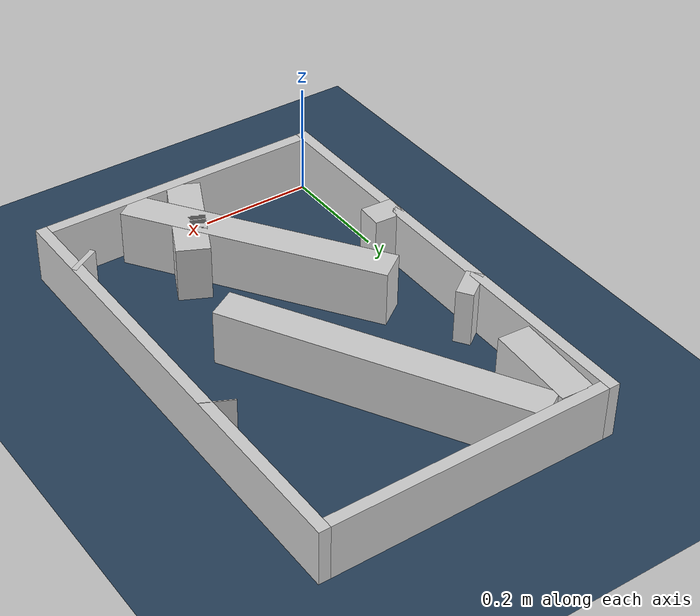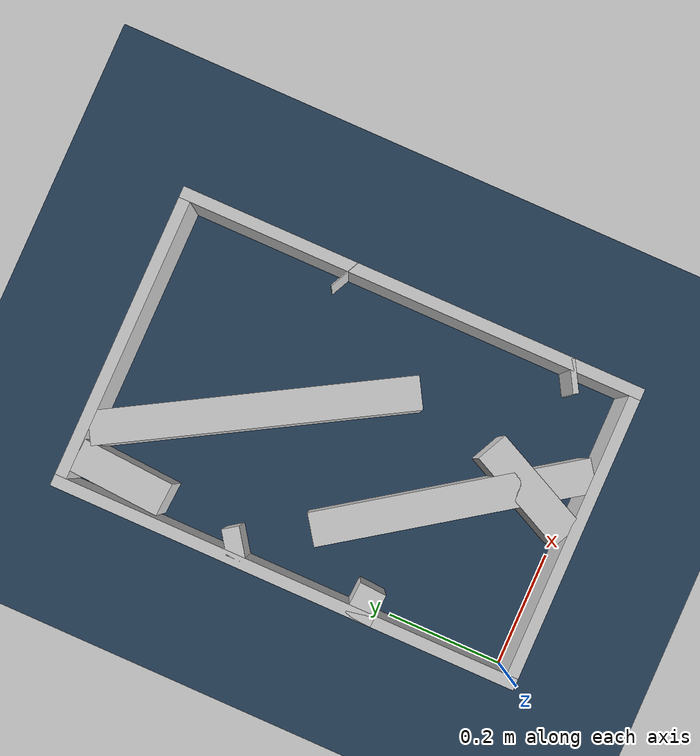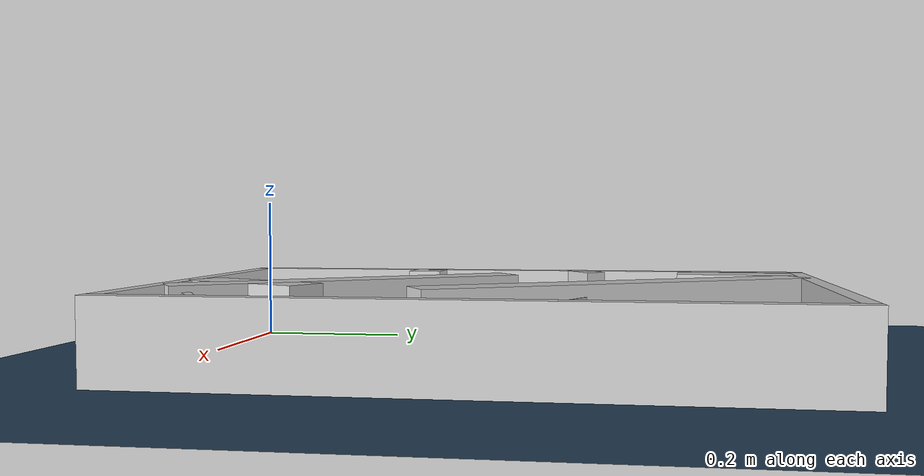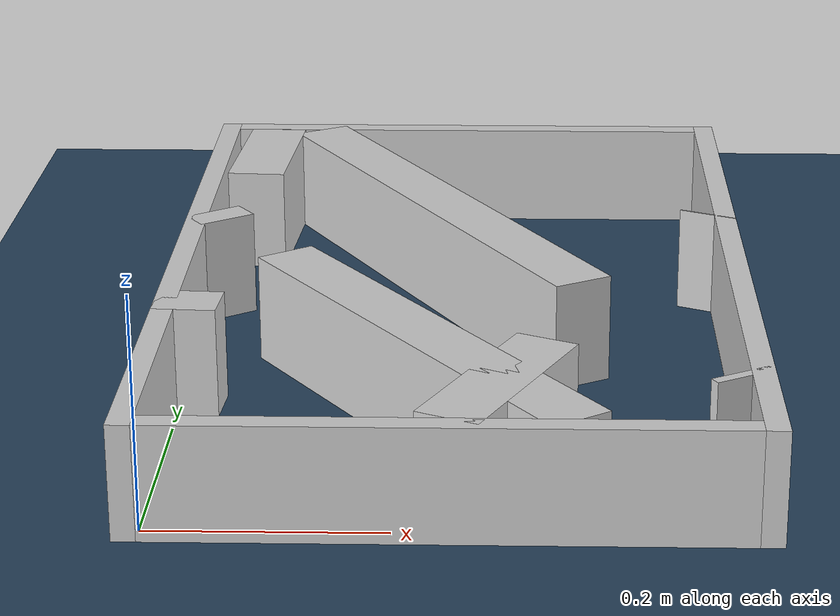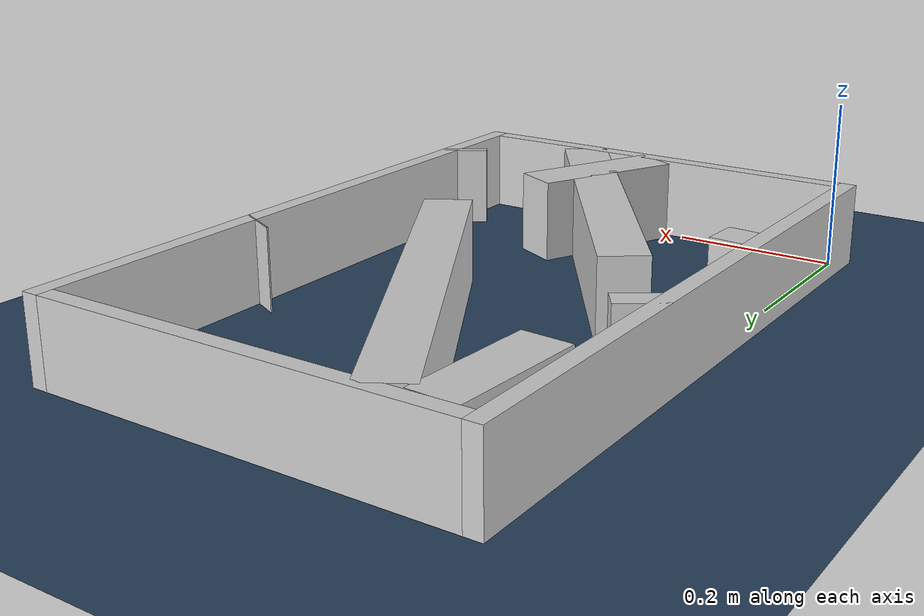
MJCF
<?xml version="1.0" ?>
<mujoco model="generated_real_template">
  <compiler angle="degree"/>
  <option timestep="0.002" integrator="implicitfast" iterations="100" cone="elliptic"/>
  <default>
    <geom density="1"/>
  </default>
  <asset>
    <texture builtin="gradient" height="3072" rgb1="0.3 0.5 0.7" rgb2="0 0 0" type="skybox" width="512"/>
    <texture builtin="checker" height="300" mark="edge" markrgb="0.8 0.8 0.8" name="groundplane" rgb1="0.2 0.3 0.4" rgb2="0.1 0.2 0.3" type="2d" width="300"/>
    <material name="groundplane" reflectance="0.2" texrepeat="5 5" texture="groundplane" texuniform="true"/>
  </asset>
  <worldbody>
    <light dir="0 0 -1" directional="true" pos="0 0 1.5"/>
    <geom name="floor" type="plane" condim="4" friction="0.5 0.005 0.001" material="groundplane" size="0 0 0.05"/>
    <body name="walls">
      <geom name="wall_boundary_left" type="box" condim="4" friction="1.0 0.005 0.0001" rgba="0.8 0.8 0.8 1" pos="-0.010000 0.387500 0.050000" euler="0 0 0.000000" size="0.010000 0.407500 0.050000"/>
      <geom name="wall_boundary_right" type="box" condim="4" friction="1.0 0.005 0.0001" rgba="0.8 0.8 0.8 1" pos="0.500000 0.387500 0.050000" euler="0 0 0.000000" size="0.010000 0.407500 0.050000"/>
      <geom name="wall_boundary_bottom" type="box" condim="4" friction="1.0 0.005 0.0001" rgba="0.8 0.8 0.8 1" pos="0.245000 -0.010000 0.050000" euler="0 0 0.000000" size="0.245000 0.010000 0.050000"/>
      <geom name="wall_boundary_top" type="box" condim="4" friction="1.0 0.005 0.0001" rgba="0.8 0.8 0.8 1" pos="0.245000 0.785000 0.050000" euler="0 0 0.000000" size="0.245000 0.010000 0.050000"/>
      <geom name="wall_inner_1_1" type="box" condim="4" friction="1.0 0.005 0.0001" rgba="0.8 0.8 0.8 1" pos="0.284190 0.084399 0.050000" euler="0 0 64.285731" size="0.093676 0.028500 0.050000"/>
      <geom name="wall_inner_1_2" type="box" condim="4" friction="1.0 0.005 0.0001" rgba="0.8 0.8 0.8 1" pos="0.483945 0.499195 0.050000" euler="0 0 64.285731" size="0.000868 0.028500 0.050000"/>
      <geom name="wall_inner_2_1" type="box" condim="4" friction="1.0 0.005 0.0001" rgba="0.8 0.8 0.8 1" pos="0.009904 0.252815 0.050000" euler="0 0 86.404443" size="0.023261 0.028500 0.050000"/>
      <geom name="wall_inner_2_2" type="box" condim="4" friction="1.0 0.005 0.0001" rgba="0.8 0.8 0.8 1" pos="0.037757 0.696081 0.050000" euler="0 0 86.404443" size="0.079075 0.028500 0.050000"/>
      <geom name="wall_inner_3_1" type="box" condim="4" friction="1.0 0.005 0.0001" rgba="0.8 0.8 0.8 1" pos="0.216819 0.190909 0.050000" euler="0 0 124.824149" size="0.232559 0.028500 0.050000"/>
      <geom name="wall_inner_3_2" type="box" condim="4" friction="1.0 0.005 0.0001" rgba="0.8 0.8 0.8 1" pos="0.011824 0.485594 0.050000" euler="0 0 124.824149" size="0.014757 0.028500 0.050000"/>
      <geom name="wall_inner_4_1" type="box" condim="4" friction="1.0 0.005 0.0001" rgba="0.8 0.8 0.8 1" pos="0.482912 0.093614 0.050000" euler="0 0 120.014684" size="0.004815 0.028500 0.050000"/>
      <geom name="wall_inner_4_2" type="box" condim="4" friction="1.0 0.005 0.0001" rgba="0.8 0.8 0.8 1" pos="0.224116 0.541598 0.050000" euler="0 0 120.014684" size="0.269549 0.028500 0.050000"/>
    </body>
  </worldbody>
</mujoco>
